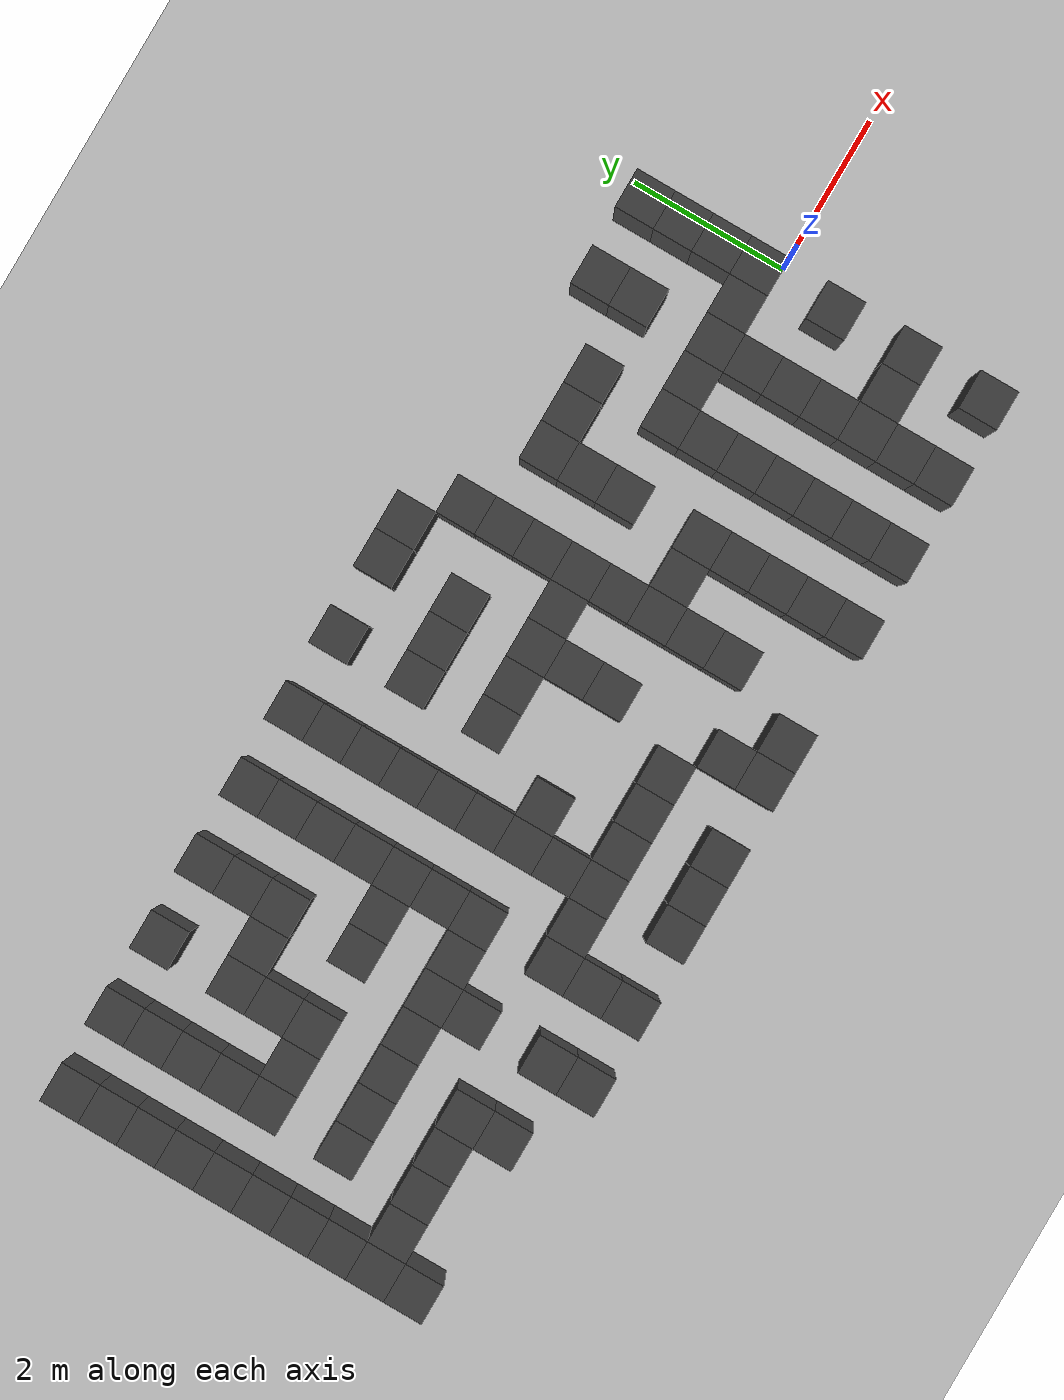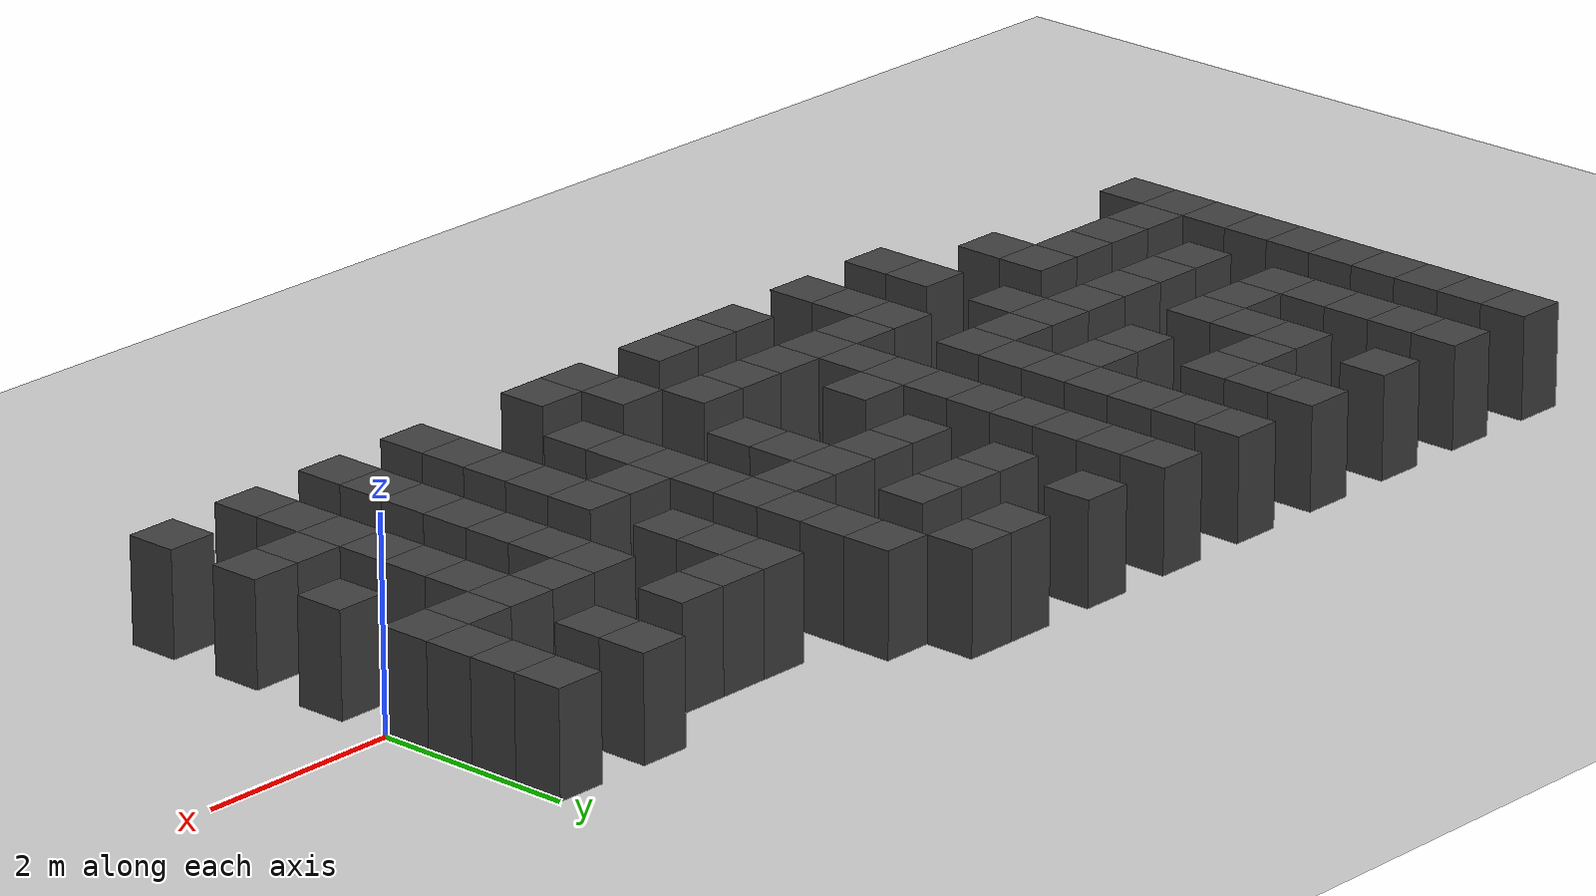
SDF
<sdf version="1.7">
 <world name="map_17503">
  <model name="ground_plane">
   <static>true</static>
   <link name="link">
    <collision name="collision">
     <geometry><plane><normal>0 0 1</normal><size>200 200</size></plane></geometry>
    </collision>
    <visual name="visual">
     <geometry><plane><normal>0 0 1</normal><size>200 200</size></plane></geometry>
     <material><ambient>0.8 0.8 0.8 1</ambient><diffuse>0.8 0.8 0.8 1</diffuse></material>
    </visual>
   </link>
  </model>
  <model name="maze_environment">
   <static>true</static>
   <link name="wall_494">
    <pose>-12.250 2.250 0.500 0 0 0</pose>
    <collision name="col"><geometry><box><size>0.5 0.5 1.0</size></box></geometry></collision>
    <visual name="vis">
     <geometry><box><size>0.5 0.5 1.0</size></box></geometry>
     <material><ambient>0.15 0.15 0.15 1</ambient><diffuse>0.25 0.25 0.25 1</diffuse></material>
    </visual>
   </link>
   <link name="wall_495">
    <pose>-11.250 2.250 0.500 0 0 0</pose>
    <collision name="col"><geometry><box><size>0.5 0.5 1.0</size></box></geometry></collision>
    <visual name="vis">
     <geometry><box><size>0.5 0.5 1.0</size></box></geometry>
     <material><ambient>0.15 0.15 0.15 1</ambient><diffuse>0.25 0.25 0.25 1</diffuse></material>
    </visual>
   </link>
   <link name="wall_496">
    <pose>-10.250 2.250 0.500 0 0 0</pose>
    <collision name="col"><geometry><box><size>0.5 0.5 1.0</size></box></geometry></collision>
    <visual name="vis">
     <geometry><box><size>0.5 0.5 1.0</size></box></geometry>
     <material><ambient>0.15 0.15 0.15 1</ambient><diffuse>0.25 0.25 0.25 1</diffuse></material>
    </visual>
   </link>
   <link name="wall_497">
    <pose>-9.250 2.250 0.500 0 0 0</pose>
    <collision name="col"><geometry><box><size>0.5 0.5 1.0</size></box></geometry></collision>
    <visual name="vis">
     <geometry><box><size>0.5 0.5 1.0</size></box></geometry>
     <material><ambient>0.15 0.15 0.15 1</ambient><diffuse>0.25 0.25 0.25 1</diffuse></material>
    </visual>
   </link>
   <link name="wall_498">
    <pose>-8.250 2.250 0.500 0 0 0</pose>
    <collision name="col"><geometry><box><size>0.5 0.5 1.0</size></box></geometry></collision>
    <visual name="vis">
     <geometry><box><size>0.5 0.5 1.0</size></box></geometry>
     <material><ambient>0.15 0.15 0.15 1</ambient><diffuse>0.25 0.25 0.25 1</diffuse></material>
    </visual>
   </link>
   <link name="wall_499">
    <pose>-7.250 2.250 0.500 0 0 0</pose>
    <collision name="col"><geometry><box><size>0.5 0.5 1.0</size></box></geometry></collision>
    <visual name="vis">
     <geometry><box><size>0.5 0.5 1.0</size></box></geometry>
     <material><ambient>0.15 0.15 0.15 1</ambient><diffuse>0.25 0.25 0.25 1</diffuse></material>
    </visual>
   </link>
   <link name="wall_500">
    <pose>-6.250 2.250 0.500 0 0 0</pose>
    <collision name="col"><geometry><box><size>0.5 0.5 1.0</size></box></geometry></collision>
    <visual name="vis">
     <geometry><box><size>0.5 0.5 1.0</size></box></geometry>
     <material><ambient>0.15 0.15 0.15 1</ambient><diffuse>0.25 0.25 0.25 1</diffuse></material>
    </visual>
   </link>
   <link name="wall_501">
    <pose>-5.250 2.250 0.500 0 0 0</pose>
    <collision name="col"><geometry><box><size>0.5 0.5 1.0</size></box></geometry></collision>
    <visual name="vis">
     <geometry><box><size>0.5 0.5 1.0</size></box></geometry>
     <material><ambient>0.15 0.15 0.15 1</ambient><diffuse>0.25 0.25 0.25 1</diffuse></material>
    </visual>
   </link>
   <link name="wall_502">
    <pose>-4.750 2.250 0.500 0 0 0</pose>
    <collision name="col"><geometry><box><size>0.5 0.5 1.0</size></box></geometry></collision>
    <visual name="vis">
     <geometry><box><size>0.5 0.5 1.0</size></box></geometry>
     <material><ambient>0.15 0.15 0.15 1</ambient><diffuse>0.25 0.25 0.25 1</diffuse></material>
    </visual>
   </link>
   <link name="wall_532">
    <pose>-12.250 1.750 0.500 0 0 0</pose>
    <collision name="col"><geometry><box><size>0.5 0.5 1.0</size></box></geometry></collision>
    <visual name="vis">
     <geometry><box><size>0.5 0.5 1.0</size></box></geometry>
     <material><ambient>0.15 0.15 0.15 1</ambient><diffuse>0.25 0.25 0.25 1</diffuse></material>
    </visual>
   </link>
   <link name="wall_533">
    <pose>-11.250 1.750 0.500 0 0 0</pose>
    <collision name="col"><geometry><box><size>0.5 0.5 1.0</size></box></geometry></collision>
    <visual name="vis">
     <geometry><box><size>0.5 0.5 1.0</size></box></geometry>
     <material><ambient>0.15 0.15 0.15 1</ambient><diffuse>0.25 0.25 0.25 1</diffuse></material>
    </visual>
   </link>
   <link name="wall_534">
    <pose>-9.250 1.750 0.500 0 0 0</pose>
    <collision name="col"><geometry><box><size>0.5 0.5 1.0</size></box></geometry></collision>
    <visual name="vis">
     <geometry><box><size>0.5 0.5 1.0</size></box></geometry>
     <material><ambient>0.15 0.15 0.15 1</ambient><diffuse>0.25 0.25 0.25 1</diffuse></material>
    </visual>
   </link>
   <link name="wall_535">
    <pose>-8.250 1.750 0.500 0 0 0</pose>
    <collision name="col"><geometry><box><size>0.5 0.5 1.0</size></box></geometry></collision>
    <visual name="vis">
     <geometry><box><size>0.5 0.5 1.0</size></box></geometry>
     <material><ambient>0.15 0.15 0.15 1</ambient><diffuse>0.25 0.25 0.25 1</diffuse></material>
    </visual>
   </link>
   <link name="wall_536">
    <pose>-7.250 1.750 0.500 0 0 0</pose>
    <collision name="col"><geometry><box><size>0.5 0.5 1.0</size></box></geometry></collision>
    <visual name="vis">
     <geometry><box><size>0.5 0.5 1.0</size></box></geometry>
     <material><ambient>0.15 0.15 0.15 1</ambient><diffuse>0.25 0.25 0.25 1</diffuse></material>
    </visual>
   </link>
   <link name="wall_537">
    <pose>-4.250 1.750 0.500 0 0 0</pose>
    <collision name="col"><geometry><box><size>0.5 0.5 1.0</size></box></geometry></collision>
    <visual name="vis">
     <geometry><box><size>0.5 0.5 1.0</size></box></geometry>
     <material><ambient>0.15 0.15 0.15 1</ambient><diffuse>0.25 0.25 0.25 1</diffuse></material>
    </visual>
   </link>
   <link name="wall_538">
    <pose>-1.250 1.750 0.500 0 0 0</pose>
    <collision name="col"><geometry><box><size>0.5 0.5 1.0</size></box></geometry></collision>
    <visual name="vis">
     <geometry><box><size>0.5 0.5 1.0</size></box></geometry>
     <material><ambient>0.15 0.15 0.15 1</ambient><diffuse>0.25 0.25 0.25 1</diffuse></material>
    </visual>
   </link>
   <link name="wall_539">
    <pose>-0.250 1.750 0.500 0 0 0</pose>
    <collision name="col"><geometry><box><size>0.5 0.5 1.0</size></box></geometry></collision>
    <visual name="vis">
     <geometry><box><size>0.5 0.5 1.0</size></box></geometry>
     <material><ambient>0.15 0.15 0.15 1</ambient><diffuse>0.25 0.25 0.25 1</diffuse></material>
    </visual>
   </link>
   <link name="wall_546">
    <pose>-12.250 1.250 0.500 0 0 0</pose>
    <collision name="col"><geometry><box><size>0.5 0.5 1.0</size></box></geometry></collision>
    <visual name="vis">
     <geometry><box><size>0.5 0.5 1.0</size></box></geometry>
     <material><ambient>0.15 0.15 0.15 1</ambient><diffuse>0.25 0.25 0.25 1</diffuse></material>
    </visual>
   </link>
   <link name="wall_547">
    <pose>-11.250 1.250 0.500 0 0 0</pose>
    <collision name="col"><geometry><box><size>0.5 0.5 1.0</size></box></geometry></collision>
    <visual name="vis">
     <geometry><box><size>0.5 0.5 1.0</size></box></geometry>
     <material><ambient>0.15 0.15 0.15 1</ambient><diffuse>0.25 0.25 0.25 1</diffuse></material>
    </visual>
   </link>
   <link name="wall_548">
    <pose>-10.250 1.250 0.500 0 0 0</pose>
    <collision name="col"><geometry><box><size>0.5 0.5 1.0</size></box></geometry></collision>
    <visual name="vis">
     <geometry><box><size>0.5 0.5 1.0</size></box></geometry>
     <material><ambient>0.15 0.15 0.15 1</ambient><diffuse>0.25 0.25 0.25 1</diffuse></material>
    </visual>
   </link>
   <link name="wall_549">
    <pose>-9.750 1.250 0.500 0 0 0</pose>
    <collision name="col"><geometry><box><size>0.5 0.5 1.0</size></box></geometry></collision>
    <visual name="vis">
     <geometry><box><size>0.5 0.5 1.0</size></box></geometry>
     <material><ambient>0.15 0.15 0.15 1</ambient><diffuse>0.25 0.25 0.25 1</diffuse></material>
    </visual>
   </link>
   <link name="wall_550">
    <pose>-9.250 1.250 0.500 0 0 0</pose>
    <collision name="col"><geometry><box><size>0.5 0.5 1.0</size></box></geometry></collision>
    <visual name="vis">
     <geometry><box><size>0.5 0.5 1.0</size></box></geometry>
     <material><ambient>0.15 0.15 0.15 1</ambient><diffuse>0.25 0.25 0.25 1</diffuse></material>
    </visual>
   </link>
   <link name="wall_551">
    <pose>-8.250 1.250 0.500 0 0 0</pose>
    <collision name="col"><geometry><box><size>0.5 0.5 1.0</size></box></geometry></collision>
    <visual name="vis">
     <geometry><box><size>0.5 0.5 1.0</size></box></geometry>
     <material><ambient>0.15 0.15 0.15 1</ambient><diffuse>0.25 0.25 0.25 1</diffuse></material>
    </visual>
   </link>
   <link name="wall_552">
    <pose>-7.250 1.250 0.500 0 0 0</pose>
    <collision name="col"><geometry><box><size>0.5 0.5 1.0</size></box></geometry></collision>
    <visual name="vis">
     <geometry><box><size>0.5 0.5 1.0</size></box></geometry>
     <material><ambient>0.15 0.15 0.15 1</ambient><diffuse>0.25 0.25 0.25 1</diffuse></material>
    </visual>
   </link>
   <link name="wall_553">
    <pose>-6.250 1.250 0.500 0 0 0</pose>
    <collision name="col"><geometry><box><size>0.5 0.5 1.0</size></box></geometry></collision>
    <visual name="vis">
     <geometry><box><size>0.5 0.5 1.0</size></box></geometry>
     <material><ambient>0.15 0.15 0.15 1</ambient><diffuse>0.25 0.25 0.25 1</diffuse></material>
    </visual>
   </link>
   <link name="wall_554">
    <pose>-5.750 1.250 0.500 0 0 0</pose>
    <collision name="col"><geometry><box><size>0.5 0.5 1.0</size></box></geometry></collision>
    <visual name="vis">
     <geometry><box><size>0.5 0.5 1.0</size></box></geometry>
     <material><ambient>0.15 0.15 0.15 1</ambient><diffuse>0.25 0.25 0.25 1</diffuse></material>
    </visual>
   </link>
   <link name="wall_555">
    <pose>-5.250 1.250 0.500 0 0 0</pose>
    <collision name="col"><geometry><box><size>0.5 0.5 1.0</size></box></geometry></collision>
    <visual name="vis">
     <geometry><box><size>0.5 0.5 1.0</size></box></geometry>
     <material><ambient>0.15 0.15 0.15 1</ambient><diffuse>0.25 0.25 0.25 1</diffuse></material>
    </visual>
   </link>
   <link name="wall_556">
    <pose>-4.250 1.250 0.500 0 0 0</pose>
    <collision name="col"><geometry><box><size>0.5 0.5 1.0</size></box></geometry></collision>
    <visual name="vis">
     <geometry><box><size>0.5 0.5 1.0</size></box></geometry>
     <material><ambient>0.15 0.15 0.15 1</ambient><diffuse>0.25 0.25 0.25 1</diffuse></material>
    </visual>
   </link>
   <link name="wall_557">
    <pose>-3.250 1.250 0.500 0 0 0</pose>
    <collision name="col"><geometry><box><size>0.5 0.5 1.0</size></box></geometry></collision>
    <visual name="vis">
     <geometry><box><size>0.5 0.5 1.0</size></box></geometry>
     <material><ambient>0.15 0.15 0.15 1</ambient><diffuse>0.25 0.25 0.25 1</diffuse></material>
    </visual>
   </link>
   <link name="wall_558">
    <pose>-2.750 1.250 0.500 0 0 0</pose>
    <collision name="col"><geometry><box><size>0.5 0.5 1.0</size></box></geometry></collision>
    <visual name="vis">
     <geometry><box><size>0.5 0.5 1.0</size></box></geometry>
     <material><ambient>0.15 0.15 0.15 1</ambient><diffuse>0.25 0.25 0.25 1</diffuse></material>
    </visual>
   </link>
   <link name="wall_559">
    <pose>-2.250 1.250 0.500 0 0 0</pose>
    <collision name="col"><geometry><box><size>0.5 0.5 1.0</size></box></geometry></collision>
    <visual name="vis">
     <geometry><box><size>0.5 0.5 1.0</size></box></geometry>
     <material><ambient>0.15 0.15 0.15 1</ambient><diffuse>0.25 0.25 0.25 1</diffuse></material>
    </visual>
   </link>
   <link name="wall_560">
    <pose>-1.250 1.250 0.500 0 0 0</pose>
    <collision name="col"><geometry><box><size>0.5 0.5 1.0</size></box></geometry></collision>
    <visual name="vis">
     <geometry><box><size>0.5 0.5 1.0</size></box></geometry>
     <material><ambient>0.15 0.15 0.15 1</ambient><diffuse>0.25 0.25 0.25 1</diffuse></material>
    </visual>
   </link>
   <link name="wall_561">
    <pose>-0.250 1.250 0.500 0 0 0</pose>
    <collision name="col"><geometry><box><size>0.5 0.5 1.0</size></box></geometry></collision>
    <visual name="vis">
     <geometry><box><size>0.5 0.5 1.0</size></box></geometry>
     <material><ambient>0.15 0.15 0.15 1</ambient><diffuse>0.25 0.25 0.25 1</diffuse></material>
    </visual>
   </link>
   <link name="wall_576">
    <pose>-12.250 0.750 0.500 0 0 0</pose>
    <collision name="col"><geometry><box><size>0.5 0.5 1.0</size></box></geometry></collision>
    <visual name="vis">
     <geometry><box><size>0.5 0.5 1.0</size></box></geometry>
     <material><ambient>0.15 0.15 0.15 1</ambient><diffuse>0.25 0.25 0.25 1</diffuse></material>
    </visual>
   </link>
   <link name="wall_577">
    <pose>-11.250 0.750 0.500 0 0 0</pose>
    <collision name="col"><geometry><box><size>0.5 0.5 1.0</size></box></geometry></collision>
    <visual name="vis">
     <geometry><box><size>0.5 0.5 1.0</size></box></geometry>
     <material><ambient>0.15 0.15 0.15 1</ambient><diffuse>0.25 0.25 0.25 1</diffuse></material>
    </visual>
   </link>
   <link name="wall_578">
    <pose>-10.250 0.750 0.500 0 0 0</pose>
    <collision name="col"><geometry><box><size>0.5 0.5 1.0</size></box></geometry></collision>
    <visual name="vis">
     <geometry><box><size>0.5 0.5 1.0</size></box></geometry>
     <material><ambient>0.15 0.15 0.15 1</ambient><diffuse>0.25 0.25 0.25 1</diffuse></material>
    </visual>
   </link>
   <link name="wall_579">
    <pose>-8.250 0.750 0.500 0 0 0</pose>
    <collision name="col"><geometry><box><size>0.5 0.5 1.0</size></box></geometry></collision>
    <visual name="vis">
     <geometry><box><size>0.5 0.5 1.0</size></box></geometry>
     <material><ambient>0.15 0.15 0.15 1</ambient><diffuse>0.25 0.25 0.25 1</diffuse></material>
    </visual>
   </link>
   <link name="wall_580">
    <pose>-7.250 0.750 0.500 0 0 0</pose>
    <collision name="col"><geometry><box><size>0.5 0.5 1.0</size></box></geometry></collision>
    <visual name="vis">
     <geometry><box><size>0.5 0.5 1.0</size></box></geometry>
     <material><ambient>0.15 0.15 0.15 1</ambient><diffuse>0.25 0.25 0.25 1</diffuse></material>
    </visual>
   </link>
   <link name="wall_581">
    <pose>-4.250 0.750 0.500 0 0 0</pose>
    <collision name="col"><geometry><box><size>0.5 0.5 1.0</size></box></geometry></collision>
    <visual name="vis">
     <geometry><box><size>0.5 0.5 1.0</size></box></geometry>
     <material><ambient>0.15 0.15 0.15 1</ambient><diffuse>0.25 0.25 0.25 1</diffuse></material>
    </visual>
   </link>
   <link name="wall_582">
    <pose>-3.250 0.750 0.500 0 0 0</pose>
    <collision name="col"><geometry><box><size>0.5 0.5 1.0</size></box></geometry></collision>
    <visual name="vis">
     <geometry><box><size>0.5 0.5 1.0</size></box></geometry>
     <material><ambient>0.15 0.15 0.15 1</ambient><diffuse>0.25 0.25 0.25 1</diffuse></material>
    </visual>
   </link>
   <link name="wall_583">
    <pose>-0.250 0.750 0.500 0 0 0</pose>
    <collision name="col"><geometry><box><size>0.5 0.5 1.0</size></box></geometry></collision>
    <visual name="vis">
     <geometry><box><size>0.5 0.5 1.0</size></box></geometry>
     <material><ambient>0.15 0.15 0.15 1</ambient><diffuse>0.25 0.25 0.25 1</diffuse></material>
    </visual>
   </link>
   <link name="wall_591">
    <pose>-12.250 0.250 0.500 0 0 0</pose>
    <collision name="col"><geometry><box><size>0.5 0.5 1.0</size></box></geometry></collision>
    <visual name="vis">
     <geometry><box><size>0.5 0.5 1.0</size></box></geometry>
     <material><ambient>0.15 0.15 0.15 1</ambient><diffuse>0.25 0.25 0.25 1</diffuse></material>
    </visual>
   </link>
   <link name="wall_592">
    <pose>-11.250 0.250 0.500 0 0 0</pose>
    <collision name="col"><geometry><box><size>0.5 0.5 1.0</size></box></geometry></collision>
    <visual name="vis">
     <geometry><box><size>0.5 0.5 1.0</size></box></geometry>
     <material><ambient>0.15 0.15 0.15 1</ambient><diffuse>0.25 0.25 0.25 1</diffuse></material>
    </visual>
   </link>
   <link name="wall_593">
    <pose>-10.750 0.250 0.500 0 0 0</pose>
    <collision name="col"><geometry><box><size>0.5 0.5 1.0</size></box></geometry></collision>
    <visual name="vis">
     <geometry><box><size>0.5 0.5 1.0</size></box></geometry>
     <material><ambient>0.15 0.15 0.15 1</ambient><diffuse>0.25 0.25 0.25 1</diffuse></material>
    </visual>
   </link>
   <link name="wall_594">
    <pose>-10.250 0.250 0.500 0 0 0</pose>
    <collision name="col"><geometry><box><size>0.5 0.5 1.0</size></box></geometry></collision>
    <visual name="vis">
     <geometry><box><size>0.5 0.5 1.0</size></box></geometry>
     <material><ambient>0.15 0.15 0.15 1</ambient><diffuse>0.25 0.25 0.25 1</diffuse></material>
    </visual>
   </link>
   <link name="wall_595">
    <pose>-9.250 0.250 0.500 0 0 0</pose>
    <collision name="col"><geometry><box><size>0.5 0.5 1.0</size></box></geometry></collision>
    <visual name="vis">
     <geometry><box><size>0.5 0.5 1.0</size></box></geometry>
     <material><ambient>0.15 0.15 0.15 1</ambient><diffuse>0.25 0.25 0.25 1</diffuse></material>
    </visual>
   </link>
   <link name="wall_596">
    <pose>-8.750 0.250 0.500 0 0 0</pose>
    <collision name="col"><geometry><box><size>0.5 0.5 1.0</size></box></geometry></collision>
    <visual name="vis">
     <geometry><box><size>0.5 0.5 1.0</size></box></geometry>
     <material><ambient>0.15 0.15 0.15 1</ambient><diffuse>0.25 0.25 0.25 1</diffuse></material>
    </visual>
   </link>
   <link name="wall_597">
    <pose>-8.250 0.250 0.500 0 0 0</pose>
    <collision name="col"><geometry><box><size>0.5 0.5 1.0</size></box></geometry></collision>
    <visual name="vis">
     <geometry><box><size>0.5 0.5 1.0</size></box></geometry>
     <material><ambient>0.15 0.15 0.15 1</ambient><diffuse>0.25 0.25 0.25 1</diffuse></material>
    </visual>
   </link>
   <link name="wall_598">
    <pose>-7.250 0.250 0.500 0 0 0</pose>
    <collision name="col"><geometry><box><size>0.5 0.5 1.0</size></box></geometry></collision>
    <visual name="vis">
     <geometry><box><size>0.5 0.5 1.0</size></box></geometry>
     <material><ambient>0.15 0.15 0.15 1</ambient><diffuse>0.25 0.25 0.25 1</diffuse></material>
    </visual>
   </link>
   <link name="wall_599">
    <pose>-6.250 0.250 0.500 0 0 0</pose>
    <collision name="col"><geometry><box><size>0.5 0.5 1.0</size></box></geometry></collision>
    <visual name="vis">
     <geometry><box><size>0.5 0.5 1.0</size></box></geometry>
     <material><ambient>0.15 0.15 0.15 1</ambient><diffuse>0.25 0.25 0.25 1</diffuse></material>
    </visual>
   </link>
   <link name="wall_600">
    <pose>-5.750 0.250 0.500 0 0 0</pose>
    <collision name="col"><geometry><box><size>0.5 0.5 1.0</size></box></geometry></collision>
    <visual name="vis">
     <geometry><box><size>0.5 0.5 1.0</size></box></geometry>
     <material><ambient>0.15 0.15 0.15 1</ambient><diffuse>0.25 0.25 0.25 1</diffuse></material>
    </visual>
   </link>
   <link name="wall_601">
    <pose>-5.250 0.250 0.500 0 0 0</pose>
    <collision name="col"><geometry><box><size>0.5 0.5 1.0</size></box></geometry></collision>
    <visual name="vis">
     <geometry><box><size>0.5 0.5 1.0</size></box></geometry>
     <material><ambient>0.15 0.15 0.15 1</ambient><diffuse>0.25 0.25 0.25 1</diffuse></material>
    </visual>
   </link>
   <link name="wall_602">
    <pose>-4.750 0.250 0.500 0 0 0</pose>
    <collision name="col"><geometry><box><size>0.5 0.5 1.0</size></box></geometry></collision>
    <visual name="vis">
     <geometry><box><size>0.5 0.5 1.0</size></box></geometry>
     <material><ambient>0.15 0.15 0.15 1</ambient><diffuse>0.25 0.25 0.25 1</diffuse></material>
    </visual>
   </link>
   <link name="wall_603">
    <pose>-4.250 0.250 0.500 0 0 0</pose>
    <collision name="col"><geometry><box><size>0.5 0.5 1.0</size></box></geometry></collision>
    <visual name="vis">
     <geometry><box><size>0.5 0.5 1.0</size></box></geometry>
     <material><ambient>0.15 0.15 0.15 1</ambient><diffuse>0.25 0.25 0.25 1</diffuse></material>
    </visual>
   </link>
   <link name="wall_604">
    <pose>-3.250 0.250 0.500 0 0 0</pose>
    <collision name="col"><geometry><box><size>0.5 0.5 1.0</size></box></geometry></collision>
    <visual name="vis">
     <geometry><box><size>0.5 0.5 1.0</size></box></geometry>
     <material><ambient>0.15 0.15 0.15 1</ambient><diffuse>0.25 0.25 0.25 1</diffuse></material>
    </visual>
   </link>
   <link name="wall_605">
    <pose>-2.250 0.250 0.500 0 0 0</pose>
    <collision name="col"><geometry><box><size>0.5 0.5 1.0</size></box></geometry></collision>
    <visual name="vis">
     <geometry><box><size>0.5 0.5 1.0</size></box></geometry>
     <material><ambient>0.15 0.15 0.15 1</ambient><diffuse>0.25 0.25 0.25 1</diffuse></material>
    </visual>
   </link>
   <link name="wall_606">
    <pose>-1.750 0.250 0.500 0 0 0</pose>
    <collision name="col"><geometry><box><size>0.5 0.5 1.0</size></box></geometry></collision>
    <visual name="vis">
     <geometry><box><size>0.5 0.5 1.0</size></box></geometry>
     <material><ambient>0.15 0.15 0.15 1</ambient><diffuse>0.25 0.25 0.25 1</diffuse></material>
    </visual>
   </link>
   <link name="wall_607">
    <pose>-1.250 0.250 0.500 0 0 0</pose>
    <collision name="col"><geometry><box><size>0.5 0.5 1.0</size></box></geometry></collision>
    <visual name="vis">
     <geometry><box><size>0.5 0.5 1.0</size></box></geometry>
     <material><ambient>0.15 0.15 0.15 1</ambient><diffuse>0.25 0.25 0.25 1</diffuse></material>
    </visual>
   </link>
   <link name="wall_608">
    <pose>-0.750 0.250 0.500 0 0 0</pose>
    <collision name="col"><geometry><box><size>0.5 0.5 1.0</size></box></geometry></collision>
    <visual name="vis">
     <geometry><box><size>0.5 0.5 1.0</size></box></geometry>
     <material><ambient>0.15 0.15 0.15 1</ambient><diffuse>0.25 0.25 0.25 1</diffuse></material>
    </visual>
   </link>
   <link name="wall_609">
    <pose>-0.250 0.250 0.500 0 0 0</pose>
    <collision name="col"><geometry><box><size>0.5 0.5 1.0</size></box></geometry></collision>
    <visual name="vis">
     <geometry><box><size>0.5 0.5 1.0</size></box></geometry>
     <material><ambient>0.15 0.15 0.15 1</ambient><diffuse>0.25 0.25 0.25 1</diffuse></material>
    </visual>
   </link>
   <link name="wall_628">
    <pose>-12.250 -0.250 0.500 0 0 0</pose>
    <collision name="col"><geometry><box><size>0.5 0.5 1.0</size></box></geometry></collision>
    <visual name="vis">
     <geometry><box><size>0.5 0.5 1.0</size></box></geometry>
     <material><ambient>0.15 0.15 0.15 1</ambient><diffuse>0.25 0.25 0.25 1</diffuse></material>
    </visual>
   </link>
   <link name="wall_629">
    <pose>-8.250 -0.250 0.500 0 0 0</pose>
    <collision name="col"><geometry><box><size>0.5 0.5 1.0</size></box></geometry></collision>
    <visual name="vis">
     <geometry><box><size>0.5 0.5 1.0</size></box></geometry>
     <material><ambient>0.15 0.15 0.15 1</ambient><diffuse>0.25 0.25 0.25 1</diffuse></material>
    </visual>
   </link>
   <link name="wall_630">
    <pose>-7.250 -0.250 0.500 0 0 0</pose>
    <collision name="col"><geometry><box><size>0.5 0.5 1.0</size></box></geometry></collision>
    <visual name="vis">
     <geometry><box><size>0.5 0.5 1.0</size></box></geometry>
     <material><ambient>0.15 0.15 0.15 1</ambient><diffuse>0.25 0.25 0.25 1</diffuse></material>
    </visual>
   </link>
   <link name="wall_631">
    <pose>-5.250 -0.250 0.500 0 0 0</pose>
    <collision name="col"><geometry><box><size>0.5 0.5 1.0</size></box></geometry></collision>
    <visual name="vis">
     <geometry><box><size>0.5 0.5 1.0</size></box></geometry>
     <material><ambient>0.15 0.15 0.15 1</ambient><diffuse>0.25 0.25 0.25 1</diffuse></material>
    </visual>
   </link>
   <link name="wall_632">
    <pose>-4.250 -0.250 0.500 0 0 0</pose>
    <collision name="col"><geometry><box><size>0.5 0.5 1.0</size></box></geometry></collision>
    <visual name="vis">
     <geometry><box><size>0.5 0.5 1.0</size></box></geometry>
     <material><ambient>0.15 0.15 0.15 1</ambient><diffuse>0.25 0.25 0.25 1</diffuse></material>
    </visual>
   </link>
   <link name="wall_633">
    <pose>-2.250 -0.250 0.500 0 0 0</pose>
    <collision name="col"><geometry><box><size>0.5 0.5 1.0</size></box></geometry></collision>
    <visual name="vis">
     <geometry><box><size>0.5 0.5 1.0</size></box></geometry>
     <material><ambient>0.15 0.15 0.15 1</ambient><diffuse>0.25 0.25 0.25 1</diffuse></material>
    </visual>
   </link>
   <link name="wall_634">
    <pose>-1.250 -0.250 0.500 0 0 0</pose>
    <collision name="col"><geometry><box><size>0.5 0.5 1.0</size></box></geometry></collision>
    <visual name="vis">
     <geometry><box><size>0.5 0.5 1.0</size></box></geometry>
     <material><ambient>0.15 0.15 0.15 1</ambient><diffuse>0.25 0.25 0.25 1</diffuse></material>
    </visual>
   </link>
   <link name="wall_643">
    <pose>-12.250 -0.750 0.500 0 0 0</pose>
    <collision name="col"><geometry><box><size>0.5 0.5 1.0</size></box></geometry></collision>
    <visual name="vis">
     <geometry><box><size>0.5 0.5 1.0</size></box></geometry>
     <material><ambient>0.15 0.15 0.15 1</ambient><diffuse>0.25 0.25 0.25 1</diffuse></material>
    </visual>
   </link>
   <link name="wall_644">
    <pose>-11.250 -0.750 0.500 0 0 0</pose>
    <collision name="col"><geometry><box><size>0.5 0.5 1.0</size></box></geometry></collision>
    <visual name="vis">
     <geometry><box><size>0.5 0.5 1.0</size></box></geometry>
     <material><ambient>0.15 0.15 0.15 1</ambient><diffuse>0.25 0.25 0.25 1</diffuse></material>
    </visual>
   </link>
   <link name="wall_645">
    <pose>-10.750 -0.750 0.500 0 0 0</pose>
    <collision name="col"><geometry><box><size>0.5 0.5 1.0</size></box></geometry></collision>
    <visual name="vis">
     <geometry><box><size>0.5 0.5 1.0</size></box></geometry>
     <material><ambient>0.15 0.15 0.15 1</ambient><diffuse>0.25 0.25 0.25 1</diffuse></material>
    </visual>
   </link>
   <link name="wall_646">
    <pose>-10.250 -0.750 0.500 0 0 0</pose>
    <collision name="col"><geometry><box><size>0.5 0.5 1.0</size></box></geometry></collision>
    <visual name="vis">
     <geometry><box><size>0.5 0.5 1.0</size></box></geometry>
     <material><ambient>0.15 0.15 0.15 1</ambient><diffuse>0.25 0.25 0.25 1</diffuse></material>
    </visual>
   </link>
   <link name="wall_647">
    <pose>-9.750 -0.750 0.500 0 0 0</pose>
    <collision name="col"><geometry><box><size>0.5 0.5 1.0</size></box></geometry></collision>
    <visual name="vis">
     <geometry><box><size>0.5 0.5 1.0</size></box></geometry>
     <material><ambient>0.15 0.15 0.15 1</ambient><diffuse>0.25 0.25 0.25 1</diffuse></material>
    </visual>
   </link>
   <link name="wall_648">
    <pose>-9.250 -0.750 0.500 0 0 0</pose>
    <collision name="col"><geometry><box><size>0.5 0.5 1.0</size></box></geometry></collision>
    <visual name="vis">
     <geometry><box><size>0.5 0.5 1.0</size></box></geometry>
     <material><ambient>0.15 0.15 0.15 1</ambient><diffuse>0.25 0.25 0.25 1</diffuse></material>
    </visual>
   </link>
   <link name="wall_649">
    <pose>-8.750 -0.750 0.500 0 0 0</pose>
    <collision name="col"><geometry><box><size>0.5 0.5 1.0</size></box></geometry></collision>
    <visual name="vis">
     <geometry><box><size>0.5 0.5 1.0</size></box></geometry>
     <material><ambient>0.15 0.15 0.15 1</ambient><diffuse>0.25 0.25 0.25 1</diffuse></material>
    </visual>
   </link>
   <link name="wall_650">
    <pose>-8.250 -0.750 0.500 0 0 0</pose>
    <collision name="col"><geometry><box><size>0.5 0.5 1.0</size></box></geometry></collision>
    <visual name="vis">
     <geometry><box><size>0.5 0.5 1.0</size></box></geometry>
     <material><ambient>0.15 0.15 0.15 1</ambient><diffuse>0.25 0.25 0.25 1</diffuse></material>
    </visual>
   </link>
   <link name="wall_651">
    <pose>-7.250 -0.750 0.500 0 0 0</pose>
    <collision name="col"><geometry><box><size>0.5 0.5 1.0</size></box></geometry></collision>
    <visual name="vis">
     <geometry><box><size>0.5 0.5 1.0</size></box></geometry>
     <material><ambient>0.15 0.15 0.15 1</ambient><diffuse>0.25 0.25 0.25 1</diffuse></material>
    </visual>
   </link>
   <link name="wall_652">
    <pose>-6.750 -0.750 0.500 0 0 0</pose>
    <collision name="col"><geometry><box><size>0.5 0.5 1.0</size></box></geometry></collision>
    <visual name="vis">
     <geometry><box><size>0.5 0.5 1.0</size></box></geometry>
     <material><ambient>0.15 0.15 0.15 1</ambient><diffuse>0.25 0.25 0.25 1</diffuse></material>
    </visual>
   </link>
   <link name="wall_653">
    <pose>-5.250 -0.750 0.500 0 0 0</pose>
    <collision name="col"><geometry><box><size>0.5 0.5 1.0</size></box></geometry></collision>
    <visual name="vis">
     <geometry><box><size>0.5 0.5 1.0</size></box></geometry>
     <material><ambient>0.15 0.15 0.15 1</ambient><diffuse>0.25 0.25 0.25 1</diffuse></material>
    </visual>
   </link>
   <link name="wall_654">
    <pose>-4.250 -0.750 0.500 0 0 0</pose>
    <collision name="col"><geometry><box><size>0.5 0.5 1.0</size></box></geometry></collision>
    <visual name="vis">
     <geometry><box><size>0.5 0.5 1.0</size></box></geometry>
     <material><ambient>0.15 0.15 0.15 1</ambient><diffuse>0.25 0.25 0.25 1</diffuse></material>
    </visual>
   </link>
   <link name="wall_655">
    <pose>-3.750 -0.750 0.500 0 0 0</pose>
    <collision name="col"><geometry><box><size>0.5 0.5 1.0</size></box></geometry></collision>
    <visual name="vis">
     <geometry><box><size>0.5 0.5 1.0</size></box></geometry>
     <material><ambient>0.15 0.15 0.15 1</ambient><diffuse>0.25 0.25 0.25 1</diffuse></material>
    </visual>
   </link>
   <link name="wall_656">
    <pose>-3.250 -0.750 0.500 0 0 0</pose>
    <collision name="col"><geometry><box><size>0.5 0.5 1.0</size></box></geometry></collision>
    <visual name="vis">
     <geometry><box><size>0.5 0.5 1.0</size></box></geometry>
     <material><ambient>0.15 0.15 0.15 1</ambient><diffuse>0.25 0.25 0.25 1</diffuse></material>
    </visual>
   </link>
   <link name="wall_657">
    <pose>-2.250 -0.750 0.500 0 0 0</pose>
    <collision name="col"><geometry><box><size>0.5 0.5 1.0</size></box></geometry></collision>
    <visual name="vis">
     <geometry><box><size>0.5 0.5 1.0</size></box></geometry>
     <material><ambient>0.15 0.15 0.15 1</ambient><diffuse>0.25 0.25 0.25 1</diffuse></material>
    </visual>
   </link>
   <link name="wall_658">
    <pose>-1.250 -0.750 0.500 0 0 0</pose>
    <collision name="col"><geometry><box><size>0.5 0.5 1.0</size></box></geometry></collision>
    <visual name="vis">
     <geometry><box><size>0.5 0.5 1.0</size></box></geometry>
     <material><ambient>0.15 0.15 0.15 1</ambient><diffuse>0.25 0.25 0.25 1</diffuse></material>
    </visual>
   </link>
   <link name="wall_659">
    <pose>-0.250 -0.750 0.500 0 0 0</pose>
    <collision name="col"><geometry><box><size>0.5 0.5 1.0</size></box></geometry></collision>
    <visual name="vis">
     <geometry><box><size>0.5 0.5 1.0</size></box></geometry>
     <material><ambient>0.15 0.15 0.15 1</ambient><diffuse>0.25 0.25 0.25 1</diffuse></material>
    </visual>
   </link>
   <link name="wall_677">
    <pose>-12.250 -1.250 0.500 0 0 0</pose>
    <collision name="col"><geometry><box><size>0.5 0.5 1.0</size></box></geometry></collision>
    <visual name="vis">
     <geometry><box><size>0.5 0.5 1.0</size></box></geometry>
     <material><ambient>0.15 0.15 0.15 1</ambient><diffuse>0.25 0.25 0.25 1</diffuse></material>
    </visual>
   </link>
   <link name="wall_678">
    <pose>-9.250 -1.250 0.500 0 0 0</pose>
    <collision name="col"><geometry><box><size>0.5 0.5 1.0</size></box></geometry></collision>
    <visual name="vis">
     <geometry><box><size>0.5 0.5 1.0</size></box></geometry>
     <material><ambient>0.15 0.15 0.15 1</ambient><diffuse>0.25 0.25 0.25 1</diffuse></material>
    </visual>
   </link>
   <link name="wall_679">
    <pose>-7.250 -1.250 0.500 0 0 0</pose>
    <collision name="col"><geometry><box><size>0.5 0.5 1.0</size></box></geometry></collision>
    <visual name="vis">
     <geometry><box><size>0.5 0.5 1.0</size></box></geometry>
     <material><ambient>0.15 0.15 0.15 1</ambient><diffuse>0.25 0.25 0.25 1</diffuse></material>
    </visual>
   </link>
   <link name="wall_680">
    <pose>-4.250 -1.250 0.500 0 0 0</pose>
    <collision name="col"><geometry><box><size>0.5 0.5 1.0</size></box></geometry></collision>
    <visual name="vis">
     <geometry><box><size>0.5 0.5 1.0</size></box></geometry>
     <material><ambient>0.15 0.15 0.15 1</ambient><diffuse>0.25 0.25 0.25 1</diffuse></material>
    </visual>
   </link>
   <link name="wall_681">
    <pose>-3.250 -1.250 0.500 0 0 0</pose>
    <collision name="col"><geometry><box><size>0.5 0.5 1.0</size></box></geometry></collision>
    <visual name="vis">
     <geometry><box><size>0.5 0.5 1.0</size></box></geometry>
     <material><ambient>0.15 0.15 0.15 1</ambient><diffuse>0.25 0.25 0.25 1</diffuse></material>
    </visual>
   </link>
   <link name="wall_682">
    <pose>-2.250 -1.250 0.500 0 0 0</pose>
    <collision name="col"><geometry><box><size>0.5 0.5 1.0</size></box></geometry></collision>
    <visual name="vis">
     <geometry><box><size>0.5 0.5 1.0</size></box></geometry>
     <material><ambient>0.15 0.15 0.15 1</ambient><diffuse>0.25 0.25 0.25 1</diffuse></material>
    </visual>
   </link>
   <link name="wall_683">
    <pose>-1.250 -1.250 0.500 0 0 0</pose>
    <collision name="col"><geometry><box><size>0.5 0.5 1.0</size></box></geometry></collision>
    <visual name="vis">
     <geometry><box><size>0.5 0.5 1.0</size></box></geometry>
     <material><ambient>0.15 0.15 0.15 1</ambient><diffuse>0.25 0.25 0.25 1</diffuse></material>
    </visual>
   </link>
   <link name="wall_691">
    <pose>-12.250 -1.750 0.500 0 0 0</pose>
    <collision name="col"><geometry><box><size>0.5 0.5 1.0</size></box></geometry></collision>
    <visual name="vis">
     <geometry><box><size>0.5 0.5 1.0</size></box></geometry>
     <material><ambient>0.15 0.15 0.15 1</ambient><diffuse>0.25 0.25 0.25 1</diffuse></material>
    </visual>
   </link>
   <link name="wall_692">
    <pose>-11.750 -1.750 0.500 0 0 0</pose>
    <collision name="col"><geometry><box><size>0.5 0.5 1.0</size></box></geometry></collision>
    <visual name="vis">
     <geometry><box><size>0.5 0.5 1.0</size></box></geometry>
     <material><ambient>0.15 0.15 0.15 1</ambient><diffuse>0.25 0.25 0.25 1</diffuse></material>
    </visual>
   </link>
   <link name="wall_693">
    <pose>-11.250 -1.750 0.500 0 0 0</pose>
    <collision name="col"><geometry><box><size>0.5 0.5 1.0</size></box></geometry></collision>
    <visual name="vis">
     <geometry><box><size>0.5 0.5 1.0</size></box></geometry>
     <material><ambient>0.15 0.15 0.15 1</ambient><diffuse>0.25 0.25 0.25 1</diffuse></material>
    </visual>
   </link>
   <link name="wall_694">
    <pose>-10.750 -1.750 0.500 0 0 0</pose>
    <collision name="col"><geometry><box><size>0.5 0.5 1.0</size></box></geometry></collision>
    <visual name="vis">
     <geometry><box><size>0.5 0.5 1.0</size></box></geometry>
     <material><ambient>0.15 0.15 0.15 1</ambient><diffuse>0.25 0.25 0.25 1</diffuse></material>
    </visual>
   </link>
   <link name="wall_695">
    <pose>-10.250 -1.750 0.500 0 0 0</pose>
    <collision name="col"><geometry><box><size>0.5 0.5 1.0</size></box></geometry></collision>
    <visual name="vis">
     <geometry><box><size>0.5 0.5 1.0</size></box></geometry>
     <material><ambient>0.15 0.15 0.15 1</ambient><diffuse>0.25 0.25 0.25 1</diffuse></material>
    </visual>
   </link>
   <link name="wall_696">
    <pose>-8.250 -1.750 0.500 0 0 0</pose>
    <collision name="col"><geometry><box><size>0.5 0.5 1.0</size></box></geometry></collision>
    <visual name="vis">
     <geometry><box><size>0.5 0.5 1.0</size></box></geometry>
     <material><ambient>0.15 0.15 0.15 1</ambient><diffuse>0.25 0.25 0.25 1</diffuse></material>
    </visual>
   </link>
   <link name="wall_697">
    <pose>-7.750 -1.750 0.500 0 0 0</pose>
    <collision name="col"><geometry><box><size>0.5 0.5 1.0</size></box></geometry></collision>
    <visual name="vis">
     <geometry><box><size>0.5 0.5 1.0</size></box></geometry>
     <material><ambient>0.15 0.15 0.15 1</ambient><diffuse>0.25 0.25 0.25 1</diffuse></material>
    </visual>
   </link>
   <link name="wall_698">
    <pose>-7.250 -1.750 0.500 0 0 0</pose>
    <collision name="col"><geometry><box><size>0.5 0.5 1.0</size></box></geometry></collision>
    <visual name="vis">
     <geometry><box><size>0.5 0.5 1.0</size></box></geometry>
     <material><ambient>0.15 0.15 0.15 1</ambient><diffuse>0.25 0.25 0.25 1</diffuse></material>
    </visual>
   </link>
   <link name="wall_699">
    <pose>-6.750 -1.750 0.500 0 0 0</pose>
    <collision name="col"><geometry><box><size>0.5 0.5 1.0</size></box></geometry></collision>
    <visual name="vis">
     <geometry><box><size>0.5 0.5 1.0</size></box></geometry>
     <material><ambient>0.15 0.15 0.15 1</ambient><diffuse>0.25 0.25 0.25 1</diffuse></material>
    </visual>
   </link>
   <link name="wall_700">
    <pose>-6.250 -1.750 0.500 0 0 0</pose>
    <collision name="col"><geometry><box><size>0.5 0.5 1.0</size></box></geometry></collision>
    <visual name="vis">
     <geometry><box><size>0.5 0.5 1.0</size></box></geometry>
     <material><ambient>0.15 0.15 0.15 1</ambient><diffuse>0.25 0.25 0.25 1</diffuse></material>
    </visual>
   </link>
   <link name="wall_701">
    <pose>-5.750 -1.750 0.500 0 0 0</pose>
    <collision name="col"><geometry><box><size>0.5 0.5 1.0</size></box></geometry></collision>
    <visual name="vis">
     <geometry><box><size>0.5 0.5 1.0</size></box></geometry>
     <material><ambient>0.15 0.15 0.15 1</ambient><diffuse>0.25 0.25 0.25 1</diffuse></material>
    </visual>
   </link>
   <link name="wall_702">
    <pose>-4.250 -1.750 0.500 0 0 0</pose>
    <collision name="col"><geometry><box><size>0.5 0.5 1.0</size></box></geometry></collision>
    <visual name="vis">
     <geometry><box><size>0.5 0.5 1.0</size></box></geometry>
     <material><ambient>0.15 0.15 0.15 1</ambient><diffuse>0.25 0.25 0.25 1</diffuse></material>
    </visual>
   </link>
   <link name="wall_703">
    <pose>-3.250 -1.750 0.500 0 0 0</pose>
    <collision name="col"><geometry><box><size>0.5 0.5 1.0</size></box></geometry></collision>
    <visual name="vis">
     <geometry><box><size>0.5 0.5 1.0</size></box></geometry>
     <material><ambient>0.15 0.15 0.15 1</ambient><diffuse>0.25 0.25 0.25 1</diffuse></material>
    </visual>
   </link>
   <link name="wall_704">
    <pose>-2.250 -1.750 0.500 0 0 0</pose>
    <collision name="col"><geometry><box><size>0.5 0.5 1.0</size></box></geometry></collision>
    <visual name="vis">
     <geometry><box><size>0.5 0.5 1.0</size></box></geometry>
     <material><ambient>0.15 0.15 0.15 1</ambient><diffuse>0.25 0.25 0.25 1</diffuse></material>
    </visual>
   </link>
   <link name="wall_705">
    <pose>-1.250 -1.750 0.500 0 0 0</pose>
    <collision name="col"><geometry><box><size>0.5 0.5 1.0</size></box></geometry></collision>
    <visual name="vis">
     <geometry><box><size>0.5 0.5 1.0</size></box></geometry>
     <material><ambient>0.15 0.15 0.15 1</ambient><diffuse>0.25 0.25 0.25 1</diffuse></material>
    </visual>
   </link>
   <link name="wall_706">
    <pose>-0.750 -1.750 0.500 0 0 0</pose>
    <collision name="col"><geometry><box><size>0.5 0.5 1.0</size></box></geometry></collision>
    <visual name="vis">
     <geometry><box><size>0.5 0.5 1.0</size></box></geometry>
     <material><ambient>0.15 0.15 0.15 1</ambient><diffuse>0.25 0.25 0.25 1</diffuse></material>
    </visual>
   </link>
   <link name="wall_707">
    <pose>-0.250 -1.750 0.500 0 0 0</pose>
    <collision name="col"><geometry><box><size>0.5 0.5 1.0</size></box></geometry></collision>
    <visual name="vis">
     <geometry><box><size>0.5 0.5 1.0</size></box></geometry>
     <material><ambient>0.15 0.15 0.15 1</ambient><diffuse>0.25 0.25 0.25 1</diffuse></material>
    </visual>
   </link>
   <link name="wall_726">
    <pose>-12.250 -2.250 0.500 0 0 0</pose>
    <collision name="col"><geometry><box><size>0.5 0.5 1.0</size></box></geometry></collision>
    <visual name="vis">
     <geometry><box><size>0.5 0.5 1.0</size></box></geometry>
     <material><ambient>0.15 0.15 0.15 1</ambient><diffuse>0.25 0.25 0.25 1</diffuse></material>
    </visual>
   </link>
   <link name="wall_727">
    <pose>-10.250 -2.250 0.500 0 0 0</pose>
    <collision name="col"><geometry><box><size>0.5 0.5 1.0</size></box></geometry></collision>
    <visual name="vis">
     <geometry><box><size>0.5 0.5 1.0</size></box></geometry>
     <material><ambient>0.15 0.15 0.15 1</ambient><diffuse>0.25 0.25 0.25 1</diffuse></material>
    </visual>
   </link>
   <link name="wall_728">
    <pose>-9.250 -2.250 0.500 0 0 0</pose>
    <collision name="col"><geometry><box><size>0.5 0.5 1.0</size></box></geometry></collision>
    <visual name="vis">
     <geometry><box><size>0.5 0.5 1.0</size></box></geometry>
     <material><ambient>0.15 0.15 0.15 1</ambient><diffuse>0.25 0.25 0.25 1</diffuse></material>
    </visual>
   </link>
   <link name="wall_729">
    <pose>-8.250 -2.250 0.500 0 0 0</pose>
    <collision name="col"><geometry><box><size>0.5 0.5 1.0</size></box></geometry></collision>
    <visual name="vis">
     <geometry><box><size>0.5 0.5 1.0</size></box></geometry>
     <material><ambient>0.15 0.15 0.15 1</ambient><diffuse>0.25 0.25 0.25 1</diffuse></material>
    </visual>
   </link>
   <link name="wall_730">
    <pose>-5.250 -2.250 0.500 0 0 0</pose>
    <collision name="col"><geometry><box><size>0.5 0.5 1.0</size></box></geometry></collision>
    <visual name="vis">
     <geometry><box><size>0.5 0.5 1.0</size></box></geometry>
     <material><ambient>0.15 0.15 0.15 1</ambient><diffuse>0.25 0.25 0.25 1</diffuse></material>
    </visual>
   </link>
   <link name="wall_731">
    <pose>-3.250 -2.250 0.500 0 0 0</pose>
    <collision name="col"><geometry><box><size>0.5 0.5 1.0</size></box></geometry></collision>
    <visual name="vis">
     <geometry><box><size>0.5 0.5 1.0</size></box></geometry>
     <material><ambient>0.15 0.15 0.15 1</ambient><diffuse>0.25 0.25 0.25 1</diffuse></material>
    </visual>
   </link>
   <link name="wall_732">
    <pose>-2.250 -2.250 0.500 0 0 0</pose>
    <collision name="col"><geometry><box><size>0.5 0.5 1.0</size></box></geometry></collision>
    <visual name="vis">
     <geometry><box><size>0.5 0.5 1.0</size></box></geometry>
     <material><ambient>0.15 0.15 0.15 1</ambient><diffuse>0.25 0.25 0.25 1</diffuse></material>
    </visual>
   </link>
   <link name="wall_733">
    <pose>-1.250 -2.250 0.500 0 0 0</pose>
    <collision name="col"><geometry><box><size>0.5 0.5 1.0</size></box></geometry></collision>
    <visual name="vis">
     <geometry><box><size>0.5 0.5 1.0</size></box></geometry>
     <material><ambient>0.15 0.15 0.15 1</ambient><diffuse>0.25 0.25 0.25 1</diffuse></material>
    </visual>
   </link>
   <link name="wall_747">
    <pose>-9.250 -2.750 0.500 0 0 0</pose>
    <collision name="col"><geometry><box><size>0.5 0.5 1.0</size></box></geometry></collision>
    <visual name="vis">
     <geometry><box><size>0.5 0.5 1.0</size></box></geometry>
     <material><ambient>0.15 0.15 0.15 1</ambient><diffuse>0.25 0.25 0.25 1</diffuse></material>
    </visual>
   </link>
   <link name="wall_748">
    <pose>-8.250 -2.750 0.500 0 0 0</pose>
    <collision name="col"><geometry><box><size>0.5 0.5 1.0</size></box></geometry></collision>
    <visual name="vis">
     <geometry><box><size>0.5 0.5 1.0</size></box></geometry>
     <material><ambient>0.15 0.15 0.15 1</ambient><diffuse>0.25 0.25 0.25 1</diffuse></material>
    </visual>
   </link>
   <link name="wall_749">
    <pose>-7.250 -2.750 0.500 0 0 0</pose>
    <collision name="col"><geometry><box><size>0.5 0.5 1.0</size></box></geometry></collision>
    <visual name="vis">
     <geometry><box><size>0.5 0.5 1.0</size></box></geometry>
     <material><ambient>0.15 0.15 0.15 1</ambient><diffuse>0.25 0.25 0.25 1</diffuse></material>
    </visual>
   </link>
   <link name="wall_750">
    <pose>-6.750 -2.750 0.500 0 0 0</pose>
    <collision name="col"><geometry><box><size>0.5 0.5 1.0</size></box></geometry></collision>
    <visual name="vis">
     <geometry><box><size>0.5 0.5 1.0</size></box></geometry>
     <material><ambient>0.15 0.15 0.15 1</ambient><diffuse>0.25 0.25 0.25 1</diffuse></material>
    </visual>
   </link>
   <link name="wall_751">
    <pose>-6.250 -2.750 0.500 0 0 0</pose>
    <collision name="col"><geometry><box><size>0.5 0.5 1.0</size></box></geometry></collision>
    <visual name="vis">
     <geometry><box><size>0.5 0.5 1.0</size></box></geometry>
     <material><ambient>0.15 0.15 0.15 1</ambient><diffuse>0.25 0.25 0.25 1</diffuse></material>
    </visual>
   </link>
   <link name="wall_752">
    <pose>-5.250 -2.750 0.500 0 0 0</pose>
    <collision name="col"><geometry><box><size>0.5 0.5 1.0</size></box></geometry></collision>
    <visual name="vis">
     <geometry><box><size>0.5 0.5 1.0</size></box></geometry>
     <material><ambient>0.15 0.15 0.15 1</ambient><diffuse>0.25 0.25 0.25 1</diffuse></material>
    </visual>
   </link>
   <link name="wall_753">
    <pose>-4.750 -2.750 0.500 0 0 0</pose>
    <collision name="col"><geometry><box><size>0.5 0.5 1.0</size></box></geometry></collision>
    <visual name="vis">
     <geometry><box><size>0.5 0.5 1.0</size></box></geometry>
     <material><ambient>0.15 0.15 0.15 1</ambient><diffuse>0.25 0.25 0.25 1</diffuse></material>
    </visual>
   </link>
   <link name="wall_754">
    <pose>-3.250 -2.750 0.500 0 0 0</pose>
    <collision name="col"><geometry><box><size>0.5 0.5 1.0</size></box></geometry></collision>
    <visual name="vis">
     <geometry><box><size>0.5 0.5 1.0</size></box></geometry>
     <material><ambient>0.15 0.15 0.15 1</ambient><diffuse>0.25 0.25 0.25 1</diffuse></material>
    </visual>
   </link>
   <link name="wall_755">
    <pose>-2.250 -2.750 0.500 0 0 0</pose>
    <collision name="col"><geometry><box><size>0.5 0.5 1.0</size></box></geometry></collision>
    <visual name="vis">
     <geometry><box><size>0.5 0.5 1.0</size></box></geometry>
     <material><ambient>0.15 0.15 0.15 1</ambient><diffuse>0.25 0.25 0.25 1</diffuse></material>
    </visual>
   </link>
   <link name="wall_756">
    <pose>-1.250 -2.750 0.500 0 0 0</pose>
    <collision name="col"><geometry><box><size>0.5 0.5 1.0</size></box></geometry></collision>
    <visual name="vis">
     <geometry><box><size>0.5 0.5 1.0</size></box></geometry>
     <material><ambient>0.15 0.15 0.15 1</ambient><diffuse>0.25 0.25 0.25 1</diffuse></material>
    </visual>
   </link>
   <link name="wall_757">
    <pose>-0.250 -2.750 0.500 0 0 0</pose>
    <collision name="col"><geometry><box><size>0.5 0.5 1.0</size></box></geometry></collision>
    <visual name="vis">
     <geometry><box><size>0.5 0.5 1.0</size></box></geometry>
     <material><ambient>0.15 0.15 0.15 1</ambient><diffuse>0.25 0.25 0.25 1</diffuse></material>
    </visual>
   </link>
  </model>
 </world>
</sdf>
